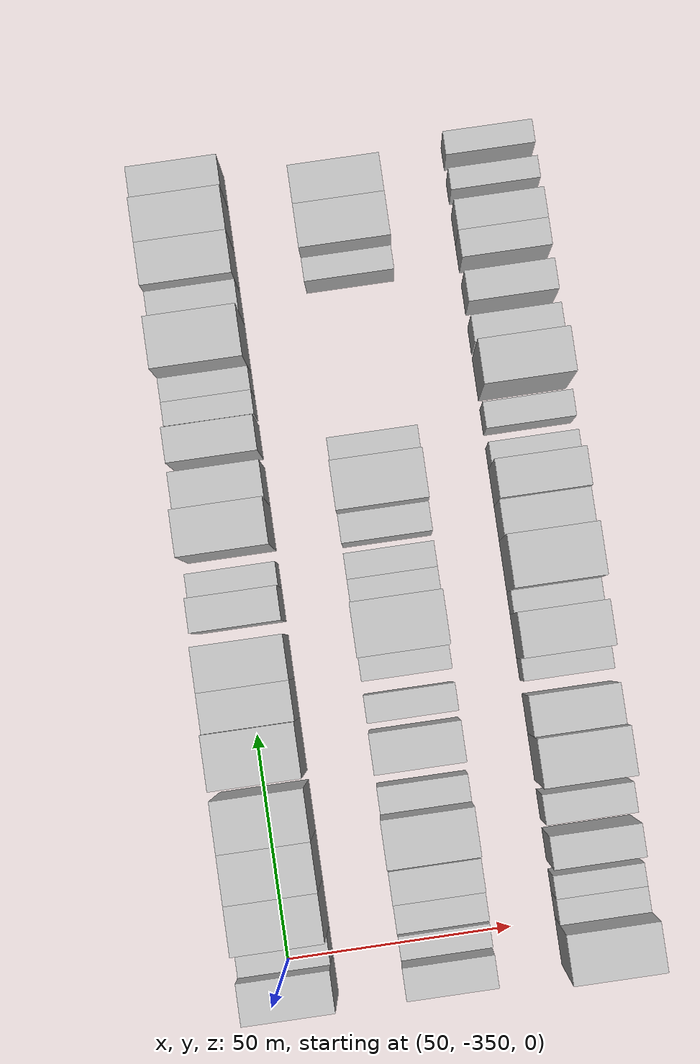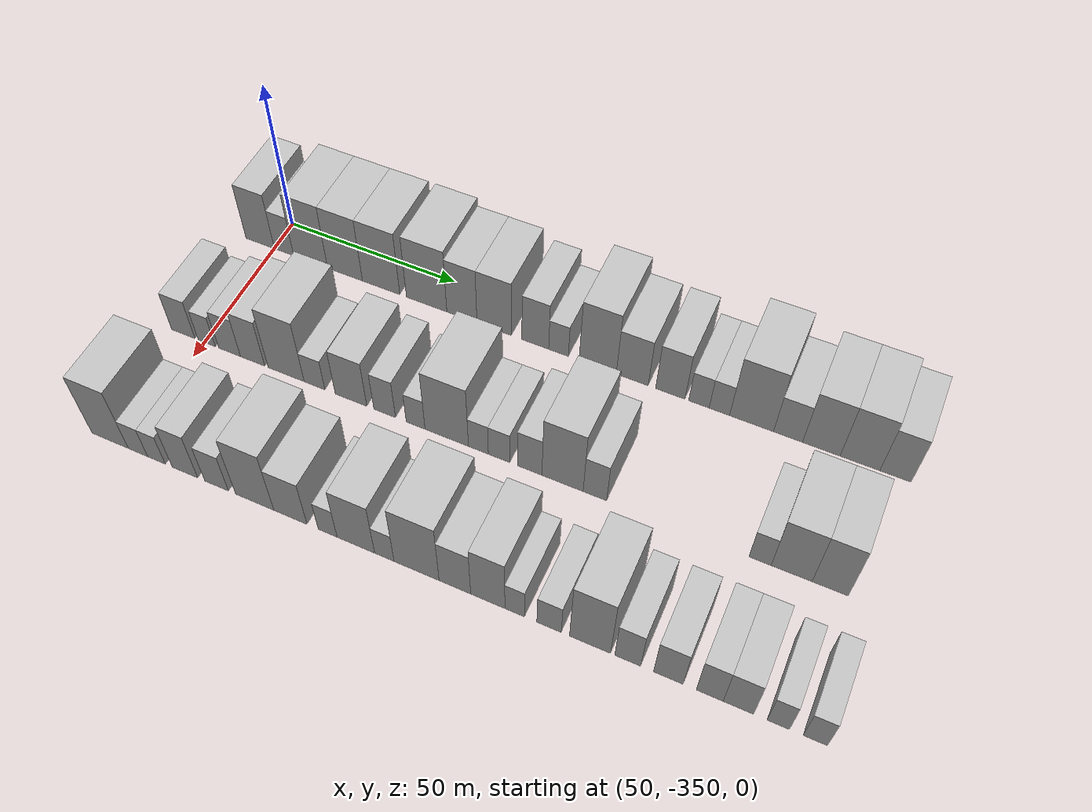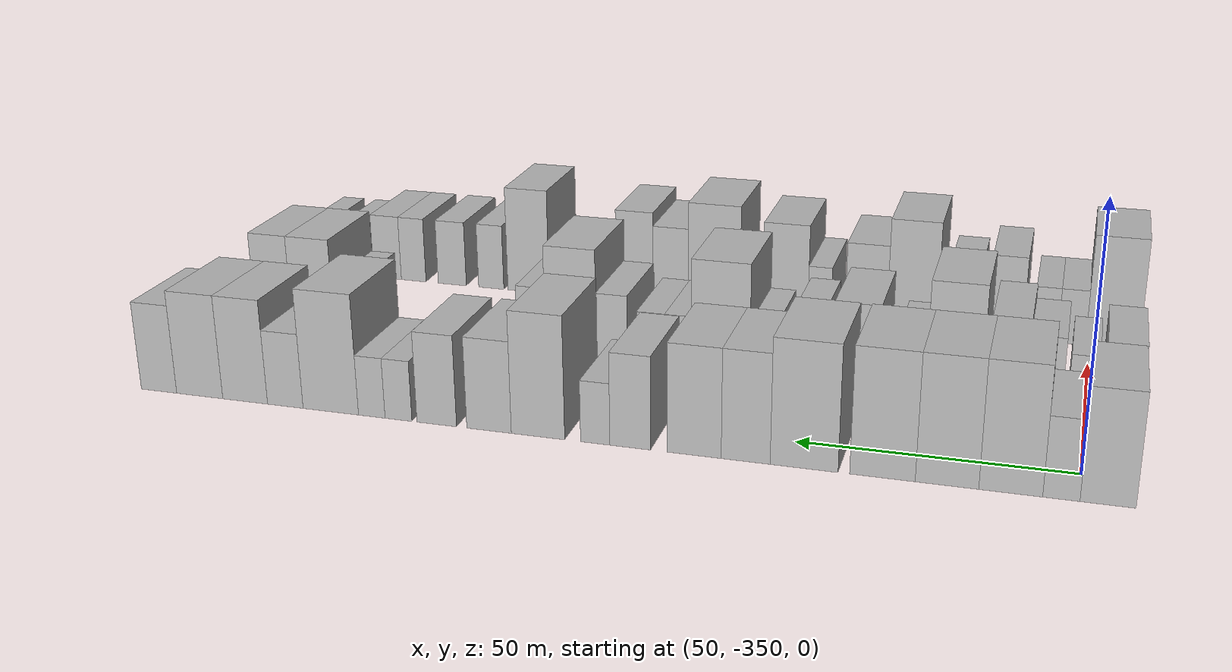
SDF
<sdf version="1.6">
 <world name="default">
  <model name="building_1">
   <static>1</static>
   <pose>50.0000 -354.4846 0 0.000000 0.000000 0.000000</pose>
   <link name="link">
    <pose>0 0 10.50 0 0 0</pose>
    <collision name="collision"><geometry><box><size>20.0000 9.0309 21.0000</size></box></geometry></collision>
    <visual name="visual">
     <cast_shadows>0</cast_shadows>
     <geometry><box><size>20.0000 9.0309 21.0000</size></box></geometry>
     <material>
      <script>
       <uri>model://HANNAS_wall/materials/scripts</uri>
       <uri>model://HANNAS_wall/materials/textures</uri>
       <name>vrc/HANNAS_wall</name>
      </script>
     </material>
    </visual>
   </link>
  </model>
  <model name="building_2">
   <static>1</static>
   <pose>50.0000 -346.9367 0 0.000000 0.000000 0.000000</pose>
   <link name="link">
    <pose>0 0 7.50 0 0 0</pose>
    <collision name="collision"><geometry><box><size>20.0000 6.0649 15.0000</size></box></geometry></collision>
    <visual name="visual">
     <cast_shadows>0</cast_shadows>
     <geometry><box><size>20.0000 6.0649 15.0000</size></box></geometry>
     <material>
      <script>
       <uri>model://HANNAS_wall/materials/scripts</uri>
       <uri>model://HANNAS_wall/materials/textures</uri>
       <name>vrc/HANNAS_wall</name>
      </script>
     </material>
    </visual>
   </link>
  </model>
  <model name="building_3">
   <static>1</static>
   <pose>50.0000 -338.6176 0 0.000000 0.000000 0.000000</pose>
   <link name="link">
    <pose>0 0 12.00 0 0 0</pose>
    <collision name="collision"><geometry><box><size>20.0000 10.5732 24.0000</size></box></geometry></collision>
    <visual name="visual">
     <cast_shadows>0</cast_shadows>
     <geometry><box><size>20.0000 10.5732 24.0000</size></box></geometry>
     <material>
      <script>
       <uri>model://HANNAS_wall/materials/scripts</uri>
       <uri>model://HANNAS_wall/materials/textures</uri>
       <name>vrc/HANNAS_wall</name>
      </script>
     </material>
    </visual>
   </link>
  </model>
  <model name="building_4">
   <static>1</static>
   <pose>50.0000 -327.9796 0 0.000000 0.000000 0.000000</pose>
   <link name="link">
    <pose>0 0 12.00 0 0 0</pose>
    <collision name="collision"><geometry><box><size>20.0000 10.7028 24.0000</size></box></geometry></collision>
    <visual name="visual">
     <cast_shadows>0</cast_shadows>
     <geometry><box><size>20.0000 10.7028 24.0000</size></box></geometry>
     <material>
      <script>
       <uri>model://HANNAS_wall/materials/scripts</uri>
       <uri>model://HANNAS_wall/materials/textures</uri>
       <name>vrc/HANNAS_wall</name>
      </script>
     </material>
    </visual>
   </link>
  </model>
  <model name="building_5">
   <static>1</static>
   <pose>50.0000 -316.9930 0 0.000000 0.000000 0.000000</pose>
   <link name="link">
    <pose>0 0 12.00 0 0 0</pose>
    <collision name="collision"><geometry><box><size>20.0000 11.2703 24.0000</size></box></geometry></collision>
    <visual name="visual">
     <cast_shadows>0</cast_shadows>
     <geometry><box><size>20.0000 11.2703 24.0000</size></box></geometry>
     <material>
      <script>
       <uri>model://HANNAS_wall/materials/scripts</uri>
       <uri>model://HANNAS_wall/materials/textures</uri>
       <name>vrc/HANNAS_wall</name>
      </script>
     </material>
    </visual>
   </link>
  </model>
  <model name="building_6">
   <static>1</static>
   <pose>50.0000 -303.3786 0 0.000000 0.000000 0.000000</pose>
   <link name="link">
    <pose>0 0 12.00 0 0 0</pose>
    <collision name="collision"><geometry><box><size>20.0000 11.9585 24.0000</size></box></geometry></collision>
    <visual name="visual">
     <cast_shadows>0</cast_shadows>
     <geometry><box><size>20.0000 11.9585 24.0000</size></box></geometry>
     <material>
      <script>
       <uri>model://HANNAS_wall/materials/scripts</uri>
       <uri>model://HANNAS_wall/materials/textures</uri>
       <name>vrc/HANNAS_wall</name>
      </script>
     </material>
    </visual>
   </link>
  </model>
  <model name="building_7">
   <static>1</static>
   <pose>50.0000 -293.0085 0 0.000000 0.000000 0.000000</pose>
   <link name="link">
    <pose>0 0 10.50 0 0 0</pose>
    <collision name="collision"><geometry><box><size>20.0000 8.7817 21.0000</size></box></geometry></collision>
    <visual name="visual">
     <cast_shadows>0</cast_shadows>
     <geometry><box><size>20.0000 8.7817 21.0000</size></box></geometry>
     <material>
      <script>
       <uri>model://HANNAS_wall/materials/scripts</uri>
       <uri>model://HANNAS_wall/materials/textures</uri>
       <name>vrc/HANNAS_wall</name>
      </script>
     </material>
    </visual>
   </link>
  </model>
  <model name="building_8">
   <static>1</static>
   <pose>50.0000 -283.6809 0 0.000000 0.000000 0.000000</pose>
   <link name="link">
    <pose>0 0 10.50 0 0 0</pose>
    <collision name="collision"><geometry><box><size>20.0000 9.8734 21.0000</size></box></geometry></collision>
    <visual name="visual">
     <cast_shadows>0</cast_shadows>
     <geometry><box><size>20.0000 9.8734 21.0000</size></box></geometry>
     <material>
      <script>
       <uri>model://HANNAS_wall/materials/scripts</uri>
       <uri>model://HANNAS_wall/materials/textures</uri>
       <name>vrc/HANNAS_wall</name>
      </script>
     </material>
    </visual>
   </link>
  </model>
  <model name="building_9">
   <static>1</static>
   <pose>50.0000 -271.9531 0 0.000000 0.000000 0.000000</pose>
   <link name="link">
    <pose>0 0 9.00 0 0 0</pose>
    <collision name="collision"><geometry><box><size>20.0000 7.5822 18.0000</size></box></geometry></collision>
    <visual name="visual">
     <cast_shadows>0</cast_shadows>
     <geometry><box><size>20.0000 7.5822 18.0000</size></box></geometry>
     <material>
      <script>
       <uri>model://HANNAS_wall/materials/scripts</uri>
       <uri>model://HANNAS_wall/materials/textures</uri>
       <name>vrc/HANNAS_wall</name>
      </script>
     </material>
    </visual>
   </link>
  </model>
  <model name="building_10">
   <static>1</static>
   <pose>50.0000 -265.4090 0 0.000000 0.000000 0.000000</pose>
   <link name="link">
    <pose>0 0 6.00 0 0 0</pose>
    <collision name="collision"><geometry><box><size>20.0000 5.5061 12.0000</size></box></geometry></collision>
    <visual name="visual">
     <cast_shadows>0</cast_shadows>
     <geometry><box><size>20.0000 5.5061 12.0000</size></box></geometry>
     <material>
      <script>
       <uri>model://HANNAS_wall/materials/scripts</uri>
       <uri>model://HANNAS_wall/materials/textures</uri>
       <name>vrc/HANNAS_wall</name>
      </script>
     </material>
    </visual>
   </link>
  </model>
  <model name="building_11">
   <static>1</static>
   <pose>50.0000 -254.5445 0 0.000000 0.000000 0.000000</pose>
   <link name="link">
    <pose>0 0 12.00 0 0 0</pose>
    <collision name="collision"><geometry><box><size>20.0000 10.2230 24.0000</size></box></geometry></collision>
    <visual name="visual">
     <cast_shadows>0</cast_shadows>
     <geometry><box><size>20.0000 10.2230 24.0000</size></box></geometry>
     <material>
      <script>
       <uri>model://HANNAS_wall/materials/scripts</uri>
       <uri>model://HANNAS_wall/materials/textures</uri>
       <name>vrc/HANNAS_wall</name>
      </script>
     </material>
    </visual>
   </link>
  </model>
  <model name="building_12">
   <static>1</static>
   <pose>50.0000 -245.1012 0 0.000000 0.000000 0.000000</pose>
   <link name="link">
    <pose>0 0 9.00 0 0 0</pose>
    <collision name="collision"><geometry><box><size>20.0000 8.6635 18.0000</size></box></geometry></collision>
    <visual name="visual">
     <cast_shadows>0</cast_shadows>
     <geometry><box><size>20.0000 8.6635 18.0000</size></box></geometry>
     <material>
      <script>
       <uri>model://HANNAS_wall/materials/scripts</uri>
       <uri>model://HANNAS_wall/materials/textures</uri>
       <name>vrc/HANNAS_wall</name>
      </script>
     </material>
    </visual>
   </link>
  </model>
  <model name="building_13">
   <static>1</static>
   <pose>50.0000 -234.8488 0 0.000000 0.000000 0.000000</pose>
   <link name="link">
    <pose>0 0 9.00 0 0 0</pose>
    <collision name="collision"><geometry><box><size>20.0000 7.8414 18.0000</size></box></geometry></collision>
    <visual name="visual">
     <cast_shadows>0</cast_shadows>
     <geometry><box><size>20.0000 7.8414 18.0000</size></box></geometry>
     <material>
      <script>
       <uri>model://HANNAS_wall/materials/scripts</uri>
       <uri>model://HANNAS_wall/materials/textures</uri>
       <name>vrc/HANNAS_wall</name>
      </script>
     </material>
    </visual>
   </link>
  </model>
  <model name="building_14">
   <static>1</static>
   <pose>50.0000 -227.2313 0 0.000000 0.000000 0.000000</pose>
   <link name="link">
    <pose>0 0 6.00 0 0 0</pose>
    <collision name="collision"><geometry><box><size>20.0000 5.3936 12.0000</size></box></geometry></collision>
    <visual name="visual">
     <cast_shadows>0</cast_shadows>
     <geometry><box><size>20.0000 5.3936 12.0000</size></box></geometry>
     <material>
      <script>
       <uri>model://HANNAS_wall/materials/scripts</uri>
       <uri>model://HANNAS_wall/materials/textures</uri>
       <name>vrc/HANNAS_wall</name>
      </script>
     </material>
    </visual>
   </link>
  </model>
  <model name="building_15">
   <static>1</static>
   <pose>50.0000 -221.8529 0 0.000000 0.000000 0.000000</pose>
   <link name="link">
    <pose>0 0 6.00 0 0 0</pose>
    <collision name="collision"><geometry><box><size>20.0000 5.3632 12.0000</size></box></geometry></collision>
    <visual name="visual">
     <cast_shadows>0</cast_shadows>
     <geometry><box><size>20.0000 5.3632 12.0000</size></box></geometry>
     <material>
      <script>
       <uri>model://HANNAS_wall/materials/scripts</uri>
       <uri>model://HANNAS_wall/materials/textures</uri>
       <name>vrc/HANNAS_wall</name>
      </script>
     </material>
    </visual>
   </link>
  </model>
  <model name="building_16">
   <static>1</static>
   <pose>50.0000 -213.4907 0 0.000000 0.000000 0.000000</pose>
   <link name="link">
    <pose>0 0 12.00 0 0 0</pose>
    <collision name="collision"><geometry><box><size>20.0000 11.3611 24.0000</size></box></geometry></collision>
    <visual name="visual">
     <cast_shadows>0</cast_shadows>
     <geometry><box><size>20.0000 11.3611 24.0000</size></box></geometry>
     <material>
      <script>
       <uri>model://HANNAS_wall/materials/scripts</uri>
       <uri>model://HANNAS_wall/materials/textures</uri>
       <name>vrc/HANNAS_wall</name>
      </script>
     </material>
    </visual>
   </link>
  </model>
  <model name="building_17">
   <static>1</static>
   <pose>50.0000 -204.1119 0 0.000000 0.000000 0.000000</pose>
   <link name="link">
    <pose>0 0 7.50 0 0 0</pose>
    <collision name="collision"><geometry><box><size>20.0000 7.3966 15.0000</size></box></geometry></collision>
    <visual name="visual">
     <cast_shadows>0</cast_shadows>
     <geometry><box><size>20.0000 7.3966 15.0000</size></box></geometry>
     <material>
      <script>
       <uri>model://HANNAS_wall/materials/scripts</uri>
       <uri>model://HANNAS_wall/materials/textures</uri>
       <name>vrc/HANNAS_wall</name>
      </script>
     </material>
    </visual>
   </link>
  </model>
  <model name="building_18">
   <static>1</static>
   <pose>50.0000 -195.6882 0 0.000000 0.000000 0.000000</pose>
   <link name="link">
    <pose>0 0 10.50 0 0 0</pose>
    <collision name="collision"><geometry><box><size>20.0000 9.4509 21.0000</size></box></geometry></collision>
    <visual name="visual">
     <cast_shadows>0</cast_shadows>
     <geometry><box><size>20.0000 9.4509 21.0000</size></box></geometry>
     <material>
      <script>
       <uri>model://HANNAS_wall/materials/scripts</uri>
       <uri>model://HANNAS_wall/materials/textures</uri>
       <name>vrc/HANNAS_wall</name>
      </script>
     </material>
    </visual>
   </link>
  </model>
  <model name="building_19">
   <static>1</static>
   <pose>50.0000 -186.0301 0 0.000000 0.000000 0.000000</pose>
   <link name="link">
    <pose>0 0 10.50 0 0 0</pose>
    <collision name="collision"><geometry><box><size>20.0000 9.8652 21.0000</size></box></geometry></collision>
    <visual name="visual">
     <cast_shadows>0</cast_shadows>
     <geometry><box><size>20.0000 9.8652 21.0000</size></box></geometry>
     <material>
      <script>
       <uri>model://HANNAS_wall/materials/scripts</uri>
       <uri>model://HANNAS_wall/materials/textures</uri>
       <name>vrc/HANNAS_wall</name>
      </script>
     </material>
    </visual>
   </link>
  </model>
  <model name="building_20">
   <static>1</static>
   <pose>50.0000 -177.2665 0 0.000000 0.000000 0.000000</pose>
   <link name="link">
    <pose>0 0 9.00 0 0 0</pose>
    <collision name="collision"><geometry><box><size>20.0000 7.6620 18.0000</size></box></geometry></collision>
    <visual name="visual">
     <cast_shadows>0</cast_shadows>
     <geometry><box><size>20.0000 7.6620 18.0000</size></box></geometry>
     <material>
      <script>
       <uri>model://HANNAS_wall/materials/scripts</uri>
       <uri>model://HANNAS_wall/materials/textures</uri>
       <name>vrc/HANNAS_wall</name>
      </script>
     </material>
    </visual>
   </link>
  </model>
  <model name="building_77">
   <static>1</static>
   <pose>85.0000 -356.4351 0 0.000000 0.000000 0.000000</pose>
   <link name="link">
    <pose>0 0 7.50 0 0 0</pose>
    <collision name="collision"><geometry><box><size>20.0000 7.1298 15.0000</size></box></geometry></collision>
    <visual name="visual">
     <cast_shadows>0</cast_shadows>
     <geometry><box><size>20.0000 7.1298 15.0000</size></box></geometry>
     <material>
      <script>
       <uri>model://HANNAS_wall/materials/scripts</uri>
       <uri>model://HANNAS_wall/materials/textures</uri>
       <name>vrc/HANNAS_wall</name>
      </script>
     </material>
    </visual>
   </link>
  </model>
  <model name="building_78">
   <static>1</static>
   <pose>85.0000 -349.2698 0 0.000000 0.000000 0.000000</pose>
   <link name="link">
    <pose>0 0 6.00 0 0 0</pose>
    <collision name="collision"><geometry><box><size>20.0000 5.2008 12.0000</size></box></geometry></collision>
    <visual name="visual">
     <cast_shadows>0</cast_shadows>
     <geometry><box><size>20.0000 5.2008 12.0000</size></box></geometry>
     <material>
      <script>
       <uri>model://HANNAS_wall/materials/scripts</uri>
       <uri>model://HANNAS_wall/materials/textures</uri>
       <name>vrc/HANNAS_wall</name>
      </script>
     </material>
    </visual>
   </link>
  </model>
  <model name="building_79">
   <static>1</static>
   <pose>85.0000 -342.3805 0 0.000000 0.000000 0.000000</pose>
   <link name="link">
    <pose>0 0 7.50 0 0 0</pose>
    <collision name="collision"><geometry><box><size>20.0000 6.5778 15.0000</size></box></geometry></collision>
    <visual name="visual">
     <cast_shadows>0</cast_shadows>
     <geometry><box><size>20.0000 6.5778 15.0000</size></box></geometry>
     <material>
      <script>
       <uri>model://HANNAS_wall/materials/scripts</uri>
       <uri>model://HANNAS_wall/materials/textures</uri>
       <name>vrc/HANNAS_wall</name>
      </script>
     </material>
    </visual>
   </link>
  </model>
  <model name="building_80">
   <static>1</static>
   <pose>85.0000 -335.4905 0 0.000000 0.000000 0.000000</pose>
   <link name="link">
    <pose>0 0 9.00 0 0 0</pose>
    <collision name="collision"><geometry><box><size>20.0000 7.2023 18.0000</size></box></geometry></collision>
    <visual name="visual">
     <cast_shadows>0</cast_shadows>
     <geometry><box><size>20.0000 7.2023 18.0000</size></box></geometry>
     <material>
      <script>
       <uri>model://HANNAS_wall/materials/scripts</uri>
       <uri>model://HANNAS_wall/materials/textures</uri>
       <name>vrc/HANNAS_wall</name>
      </script>
     </material>
    </visual>
   </link>
  </model>
  <model name="building_81">
   <static>1</static>
   <pose>85.0000 -325.5970 0 0.000000 0.000000 0.000000</pose>
   <link name="link">
    <pose>0 0 12.00 0 0 0</pose>
    <collision name="collision"><geometry><box><size>20.0000 10.5845 24.0000</size></box></geometry></collision>
    <visual name="visual">
     <cast_shadows>0</cast_shadows>
     <geometry><box><size>20.0000 10.5845 24.0000</size></box></geometry>
     <material>
      <script>
       <uri>model://HANNAS_wall/materials/scripts</uri>
       <uri>model://HANNAS_wall/materials/textures</uri>
       <name>vrc/HANNAS_wall</name>
      </script>
     </material>
    </visual>
   </link>
  </model>
  <model name="building_82">
   <static>1</static>
   <pose>85.0000 -317.3153 0 0.000000 0.000000 0.000000</pose>
   <link name="link">
    <pose>0 0 6.00 0 0 0</pose>
    <collision name="collision"><geometry><box><size>20.0000 5.9789 12.0000</size></box></geometry></collision>
    <visual name="visual">
     <cast_shadows>0</cast_shadows>
     <geometry><box><size>20.0000 5.9789 12.0000</size></box></geometry>
     <material>
      <script>
       <uri>model://HANNAS_wall/materials/scripts</uri>
       <uri>model://HANNAS_wall/materials/textures</uri>
       <name>vrc/HANNAS_wall</name>
      </script>
     </material>
    </visual>
   </link>
  </model>
  <model name="building_83">
   <static>1</static>
   <pose>85.0000 -306.8325 0 0.000000 0.000000 0.000000</pose>
   <link name="link">
    <pose>0 0 9.00 0 0 0</pose>
    <collision name="collision"><geometry><box><size>20.0000 8.9867 18.0000</size></box></geometry></collision>
    <visual name="visual">
     <cast_shadows>0</cast_shadows>
     <geometry><box><size>20.0000 8.9867 18.0000</size></box></geometry>
     <material>
      <script>
       <uri>model://HANNAS_wall/materials/scripts</uri>
       <uri>model://HANNAS_wall/materials/textures</uri>
       <name>vrc/HANNAS_wall</name>
      </script>
     </material>
    </visual>
   </link>
  </model>
  <model name="building_84">
   <static>1</static>
   <pose>85.0000 -297.3110 0 0.000000 0.000000 0.000000</pose>
   <link name="link">
    <pose>0 0 7.50 0 0 0</pose>
    <collision name="collision"><geometry><box><size>20.0000 6.0563 15.0000</size></box></geometry></collision>
    <visual name="visual">
     <cast_shadows>0</cast_shadows>
     <geometry><box><size>20.0000 6.0563 15.0000</size></box></geometry>
     <material>
      <script>
       <uri>model://HANNAS_wall/materials/scripts</uri>
       <uri>model://HANNAS_wall/materials/textures</uri>
       <name>vrc/HANNAS_wall</name>
      </script>
     </material>
    </visual>
   </link>
  </model>
  <model name="building_85">
   <static>1</static>
   <pose>85.0000 -288.6707 0 0.000000 0.000000 0.000000</pose>
   <link name="link">
    <pose>0 0 6.00 0 0 0</pose>
    <collision name="collision"><geometry><box><size>20.0000 5.2242 12.0000</size></box></geometry></collision>
    <visual name="visual">
     <cast_shadows>0</cast_shadows>
     <geometry><box><size>20.0000 5.2242 12.0000</size></box></geometry>
     <material>
      <script>
       <uri>model://HANNAS_wall/materials/scripts</uri>
       <uri>model://HANNAS_wall/materials/textures</uri>
       <name>vrc/HANNAS_wall</name>
      </script>
     </material>
    </visual>
   </link>
  </model>
  <model name="building_86">
   <static>1</static>
   <pose>85.0000 -280.1281 0 0.000000 0.000000 0.000000</pose>
   <link name="link">
    <pose>0 0 12.00 0 0 0</pose>
    <collision name="collision"><geometry><box><size>20.0000 11.8610 24.0000</size></box></geometry></collision>
    <visual name="visual">
     <cast_shadows>0</cast_shadows>
     <geometry><box><size>20.0000 11.8610 24.0000</size></box></geometry>
     <material>
      <script>
       <uri>model://HANNAS_wall/materials/scripts</uri>
       <uri>model://HANNAS_wall/materials/textures</uri>
       <name>vrc/HANNAS_wall</name>
      </script>
     </material>
    </visual>
   </link>
  </model>
  <model name="building_87">
   <static>1</static>
   <pose>85.0000 -271.5228 0 0.000000 0.000000 0.000000</pose>
   <link name="link">
    <pose>0 0 6.00 0 0 0</pose>
    <collision name="collision"><geometry><box><size>20.0000 5.3496 12.0000</size></box></geometry></collision>
    <visual name="visual">
     <cast_shadows>0</cast_shadows>
     <geometry><box><size>20.0000 5.3496 12.0000</size></box></geometry>
     <material>
      <script>
       <uri>model://HANNAS_wall/materials/scripts</uri>
       <uri>model://HANNAS_wall/materials/textures</uri>
       <name>vrc/HANNAS_wall</name>
      </script>
     </material>
    </visual>
   </link>
  </model>
  <model name="building_88">
   <static>1</static>
   <pose>85.0000 -265.9810 0 0.000000 0.000000 0.000000</pose>
   <link name="link">
    <pose>0 0 6.00 0 0 0</pose>
    <collision name="collision"><geometry><box><size>20.0000 5.7339 12.0000</size></box></geometry></collision>
    <visual name="visual">
     <cast_shadows>0</cast_shadows>
     <geometry><box><size>20.0000 5.7339 12.0000</size></box></geometry>
     <material>
      <script>
       <uri>model://HANNAS_wall/materials/scripts</uri>
       <uri>model://HANNAS_wall/materials/textures</uri>
       <name>vrc/HANNAS_wall</name>
      </script>
     </material>
    </visual>
   </link>
  </model>
  <model name="building_89">
   <static>1</static>
   <pose>85.0000 -257.8806 0 0.000000 0.000000 0.000000</pose>
   <link name="link">
    <pose>0 0 7.50 0 0 0</pose>
    <collision name="collision"><geometry><box><size>20.0000 6.4669 15.0000</size></box></geometry></collision>
    <visual name="visual">
     <cast_shadows>0</cast_shadows>
     <geometry><box><size>20.0000 6.4669 15.0000</size></box></geometry>
     <material>
      <script>
       <uri>model://HANNAS_wall/materials/scripts</uri>
       <uri>model://HANNAS_wall/materials/textures</uri>
       <name>vrc/HANNAS_wall</name>
      </script>
     </material>
    </visual>
   </link>
  </model>
  <model name="building_90">
   <static>1</static>
   <pose>85.0000 -249.2735 0 0.000000 0.000000 0.000000</pose>
   <link name="link">
    <pose>0 0 12.00 0 0 0</pose>
    <collision name="collision"><geometry><box><size>20.0000 10.7474 24.0000</size></box></geometry></collision>
    <visual name="visual">
     <cast_shadows>0</cast_shadows>
     <geometry><box><size>20.0000 10.7474 24.0000</size></box></geometry>
     <material>
      <script>
       <uri>model://HANNAS_wall/materials/scripts</uri>
       <uri>model://HANNAS_wall/materials/textures</uri>
       <name>vrc/HANNAS_wall</name>
      </script>
     </material>
    </visual>
   </link>
  </model>
  <model name="building_91">
   <static>1</static>
   <pose>85.0000 -240.8806 0 0.000000 0.000000 0.000000</pose>
   <link name="link">
    <pose>0 0 7.50 0 0 0</pose>
    <collision name="collision"><geometry><box><size>20.0000 6.0384 15.0000</size></box></geometry></collision>
    <visual name="visual">
     <cast_shadows>0</cast_shadows>
     <geometry><box><size>20.0000 6.0384 15.0000</size></box></geometry>
     <material>
      <script>
       <uri>model://HANNAS_wall/materials/scripts</uri>
       <uri>model://HANNAS_wall/materials/textures</uri>
       <name>vrc/HANNAS_wall</name>
      </script>
     </material>
    </visual>
   </link>
  </model>
  <model name="building_92">
   <static>1</static>
   <pose>85.0000 -199.8554 0 0.000000 0.000000 0.000000</pose>
   <link name="link">
    <pose>0 0 6.00 0 0 0</pose>
    <collision name="collision"><geometry><box><size>20.0000 5.3373 12.0000</size></box></geometry></collision>
    <visual name="visual">
     <cast_shadows>0</cast_shadows>
     <geometry><box><size>20.0000 5.3373 12.0000</size></box></geometry>
     <material>
      <script>
       <uri>model://HANNAS_wall/materials/scripts</uri>
       <uri>model://HANNAS_wall/materials/textures</uri>
       <name>vrc/HANNAS_wall</name>
      </script>
     </material>
    </visual>
   </link>
  </model>
  <model name="building_93">
   <static>1</static>
   <pose>85.0000 -192.3418 0 0.000000 0.000000 0.000000</pose>
   <link name="link">
    <pose>0 0 10.50 0 0 0</pose>
    <collision name="collision"><geometry><box><size>20.0000 9.6899 21.0000</size></box></geometry></collision>
    <visual name="visual">
     <cast_shadows>0</cast_shadows>
     <geometry><box><size>20.0000 9.6899 21.0000</size></box></geometry>
     <material>
      <script>
       <uri>model://HANNAS_wall/materials/scripts</uri>
       <uri>model://HANNAS_wall/materials/textures</uri>
       <name>vrc/HANNAS_wall</name>
      </script>
     </material>
    </visual>
   </link>
  </model>
  <model name="building_94">
   <static>1</static>
   <pose>85.0000 -183.2558 0 0.000000 0.000000 0.000000</pose>
   <link name="link">
    <pose>0 0 10.50 0 0 0</pose>
    <collision name="collision"><geometry><box><size>20.0000 8.4821 21.0000</size></box></geometry></collision>
    <visual name="visual">
     <cast_shadows>0</cast_shadows>
     <geometry><box><size>20.0000 8.4821 21.0000</size></box></geometry>
     <material>
      <script>
       <uri>model://HANNAS_wall/materials/scripts</uri>
       <uri>model://HANNAS_wall/materials/textures</uri>
       <name>vrc/HANNAS_wall</name>
      </script>
     </material>
    </visual>
   </link>
  </model>
  <model name="building_159">
   <static>1</static>
   <pose>120.0000 -354.6484 0 0.000000 0.000000 0.000000</pose>
   <link name="link">
    <pose>0 0 12.00 0 0 0</pose>
    <collision name="collision"><geometry><box><size>20.0000 10.7032 24.0000</size></box></geometry></collision>
    <visual name="visual">
     <cast_shadows>0</cast_shadows>
     <geometry><box><size>20.0000 10.7032 24.0000</size></box></geometry>
     <material>
      <script>
       <uri>model://HANNAS_wall/materials/scripts</uri>
       <uri>model://HANNAS_wall/materials/textures</uri>
       <name>vrc/HANNAS_wall</name>
      </script>
     </material>
    </visual>
   </link>
  </model>
  <model name="building_160">
   <static>1</static>
   <pose>120.0000 -346.4985 0 0.000000 0.000000 0.000000</pose>
   <link name="link">
    <pose>0 0 6.00 0 0 0</pose>
    <collision name="collision"><geometry><box><size>20.0000 5.5966 12.0000</size></box></geometry></collision>
    <visual name="visual">
     <cast_shadows>0</cast_shadows>
     <geometry><box><size>20.0000 5.5966 12.0000</size></box></geometry>
     <material>
      <script>
       <uri>model://HANNAS_wall/materials/scripts</uri>
       <uri>model://HANNAS_wall/materials/textures</uri>
       <name>vrc/HANNAS_wall</name>
      </script>
     </material>
    </visual>
   </link>
  </model>
  <model name="building_161">
   <static>1</static>
   <pose>120.0000 -341.1580 0 0.000000 0.000000 0.000000</pose>
   <link name="link">
    <pose>0 0 6.00 0 0 0</pose>
    <collision name="collision"><geometry><box><size>20.0000 5.0844 12.0000</size></box></geometry></collision>
    <visual name="visual">
     <cast_shadows>0</cast_shadows>
     <geometry><box><size>20.0000 5.0844 12.0000</size></box></geometry>
     <material>
      <script>
       <uri>model://HANNAS_wall/materials/scripts</uri>
       <uri>model://HANNAS_wall/materials/textures</uri>
       <name>vrc/HANNAS_wall</name>
      </script>
     </material>
    </visual>
   </link>
  </model>
  <model name="building_162">
   <static>1</static>
   <pose>120.0000 -333.0033 0 0.000000 0.000000 0.000000</pose>
   <link name="link">
    <pose>0 0 9.00 0 0 0</pose>
    <collision name="collision"><geometry><box><size>20.0000 7.2250 18.0000</size></box></geometry></collision>
    <visual name="visual">
     <cast_shadows>0</cast_shadows>
     <geometry><box><size>20.0000 7.2250 18.0000</size></box></geometry>
     <material>
      <script>
       <uri>model://HANNAS_wall/materials/scripts</uri>
       <uri>model://HANNAS_wall/materials/textures</uri>
       <name>vrc/HANNAS_wall</name>
      </script>
     </material>
    </visual>
   </link>
  </model>
  <model name="building_163">
   <static>1</static>
   <pose>120.0000 -324.0798 0 0.000000 0.000000 0.000000</pose>
   <link name="link">
    <pose>0 0 7.50 0 0 0</pose>
    <collision name="collision"><geometry><box><size>20.0000 6.6219 15.0000</size></box></geometry></collision>
    <visual name="visual">
     <cast_shadows>0</cast_shadows>
     <geometry><box><size>20.0000 6.6219 15.0000</size></box></geometry>
     <material>
      <script>
       <uri>model://HANNAS_wall/materials/scripts</uri>
       <uri>model://HANNAS_wall/materials/textures</uri>
       <name>vrc/HANNAS_wall</name>
      </script>
     </material>
    </visual>
   </link>
  </model>
  <model name="building_164">
   <static>1</static>
   <pose>120.0000 -313.4905 0 0.000000 0.000000 0.000000</pose>
   <link name="link">
    <pose>0 0 12.00 0 0 0</pose>
    <collision name="collision"><geometry><box><size>20.0000 10.5567 24.0000</size></box></geometry></collision>
    <visual name="visual">
     <cast_shadows>0</cast_shadows>
     <geometry><box><size>20.0000 10.5567 24.0000</size></box></geometry>
     <material>
      <script>
       <uri>model://HANNAS_wall/materials/scripts</uri>
       <uri>model://HANNAS_wall/materials/textures</uri>
       <name>vrc/HANNAS_wall</name>
      </script>
     </material>
    </visual>
   </link>
  </model>
  <model name="building_165">
   <static>1</static>
   <pose>120.0000 -303.7315 0 0.000000 0.000000 0.000000</pose>
   <link name="link">
    <pose>0 0 9.00 0 0 0</pose>
    <collision name="collision"><geometry><box><size>20.0000 8.9613 18.0000</size></box></geometry></collision>
    <visual name="visual">
     <cast_shadows>0</cast_shadows>
     <geometry><box><size>20.0000 8.9613 18.0000</size></box></geometry>
     <material>
      <script>
       <uri>model://HANNAS_wall/materials/scripts</uri>
       <uri>model://HANNAS_wall/materials/textures</uri>
       <name>vrc/HANNAS_wall</name>
      </script>
     </material>
    </visual>
   </link>
  </model>
  <model name="building_166">
   <static>1</static>
   <pose>120.0000 -293.7350 0 0.000000 0.000000 0.000000</pose>
   <link name="link">
    <pose>0 0 6.00 0 0 0</pose>
    <collision name="collision"><geometry><box><size>20.0000 5.0317 12.0000</size></box></geometry></collision>
    <visual name="visual">
     <cast_shadows>0</cast_shadows>
     <geometry><box><size>20.0000 5.0317 12.0000</size></box></geometry>
     <material>
      <script>
       <uri>model://HANNAS_wall/materials/scripts</uri>
       <uri>model://HANNAS_wall/materials/textures</uri>
       <name>vrc/HANNAS_wall</name>
      </script>
     </material>
    </visual>
   </link>
  </model>
  <model name="building_167">
   <static>1</static>
   <pose>120.0000 -286.2786 0 0.000000 0.000000 0.000000</pose>
   <link name="link">
    <pose>0 0 10.50 0 0 0</pose>
    <collision name="collision"><geometry><box><size>20.0000 9.8811 21.0000</size></box></geometry></collision>
    <visual name="visual">
     <cast_shadows>0</cast_shadows>
     <geometry><box><size>20.0000 9.8811 21.0000</size></box></geometry>
     <material>
      <script>
       <uri>model://HANNAS_wall/materials/scripts</uri>
       <uri>model://HANNAS_wall/materials/textures</uri>
       <name>vrc/HANNAS_wall</name>
      </script>
     </material>
    </visual>
   </link>
  </model>
  <model name="building_168">
   <static>1</static>
   <pose>120.0000 -278.8066 0 0.000000 0.000000 0.000000</pose>
   <link name="link">
    <pose>0 0 6.00 0 0 0</pose>
    <collision name="collision"><geometry><box><size>20.0000 5.0628 12.0000</size></box></geometry></collision>
    <visual name="visual">
     <cast_shadows>0</cast_shadows>
     <geometry><box><size>20.0000 5.0628 12.0000</size></box></geometry>
     <material>
      <script>
       <uri>model://HANNAS_wall/materials/scripts</uri>
       <uri>model://HANNAS_wall/materials/textures</uri>
       <name>vrc/HANNAS_wall</name>
      </script>
     </material>
    </visual>
   </link>
  </model>
  <model name="building_169">
   <static>1</static>
   <pose>120.0000 -270.4989 0 0.000000 0.000000 0.000000</pose>
   <link name="link">
    <pose>0 0 12.00 0 0 0</pose>
    <collision name="collision"><geometry><box><size>20.0000 11.5526 24.0000</size></box></geometry></collision>
    <visual name="visual">
     <cast_shadows>0</cast_shadows>
     <geometry><box><size>20.0000 11.5526 24.0000</size></box></geometry>
     <material>
      <script>
       <uri>model://HANNAS_wall/materials/scripts</uri>
       <uri>model://HANNAS_wall/materials/textures</uri>
       <name>vrc/HANNAS_wall</name>
      </script>
     </material>
    </visual>
   </link>
  </model>
  <model name="building_170">
   <static>1</static>
   <pose>120.0000 -260.7447 0 0.000000 0.000000 0.000000</pose>
   <link name="link">
    <pose>0 0 9.00 0 0 0</pose>
    <collision name="collision"><geometry><box><size>20.0000 7.9560 18.0000</size></box></geometry></collision>
    <visual name="visual">
     <cast_shadows>0</cast_shadows>
     <geometry><box><size>20.0000 7.9560 18.0000</size></box></geometry>
     <material>
      <script>
       <uri>model://HANNAS_wall/materials/scripts</uri>
       <uri>model://HANNAS_wall/materials/textures</uri>
       <name>vrc/HANNAS_wall</name>
      </script>
     </material>
    </visual>
   </link>
  </model>
  <model name="building_171">
   <static>1</static>
   <pose>120.0000 -252.5085 0 0.000000 0.000000 0.000000</pose>
   <link name="link">
    <pose>0 0 10.50 0 0 0</pose>
    <collision name="collision"><geometry><box><size>20.0000 8.5163 21.0000</size></box></geometry></collision>
    <visual name="visual">
     <cast_shadows>0</cast_shadows>
     <geometry><box><size>20.0000 8.5163 21.0000</size></box></geometry>
     <material>
      <script>
       <uri>model://HANNAS_wall/materials/scripts</uri>
       <uri>model://HANNAS_wall/materials/textures</uri>
       <name>vrc/HANNAS_wall</name>
      </script>
     </material>
    </visual>
   </link>
  </model>
  <model name="building_172">
   <static>1</static>
   <pose>120.0000 -245.8384 0 0.000000 0.000000 0.000000</pose>
   <link name="link">
    <pose>0 0 6.00 0 0 0</pose>
    <collision name="collision"><geometry><box><size>20.0000 4.8240 12.0000</size></box></geometry></collision>
    <visual name="visual">
     <cast_shadows>0</cast_shadows>
     <geometry><box><size>20.0000 4.8240 12.0000</size></box></geometry>
     <material>
      <script>
       <uri>model://HANNAS_wall/materials/scripts</uri>
       <uri>model://HANNAS_wall/materials/textures</uri>
       <name>vrc/HANNAS_wall</name>
      </script>
     </material>
    </visual>
   </link>
  </model>
  <model name="building_173">
   <static>1</static>
   <pose>120.0000 -237.4725 0 0.000000 0.000000 0.000000</pose>
   <link name="link">
    <pose>0 0 6.00 0 0 0</pose>
    <collision name="collision"><geometry><box><size>20.0000 5.9077 12.0000</size></box></geometry></collision>
    <visual name="visual">
     <cast_shadows>0</cast_shadows>
     <geometry><box><size>20.0000 5.9077 12.0000</size></box></geometry>
     <material>
      <script>
       <uri>model://HANNAS_wall/materials/scripts</uri>
       <uri>model://HANNAS_wall/materials/textures</uri>
       <name>vrc/HANNAS_wall</name>
      </script>
     </material>
    </visual>
   </link>
  </model>
  <model name="building_174">
   <static>1</static>
   <pose>120.0000 -227.6288 0 0.000000 0.000000 0.000000</pose>
   <link name="link">
    <pose>0 0 12.00 0 0 0</pose>
    <collision name="collision"><geometry><box><size>20.0000 9.7797 24.0000</size></box></geometry></collision>
    <visual name="visual">
     <cast_shadows>0</cast_shadows>
     <geometry><box><size>20.0000 9.7797 24.0000</size></box></geometry>
     <material>
      <script>
       <uri>model://HANNAS_wall/materials/scripts</uri>
       <uri>model://HANNAS_wall/materials/textures</uri>
       <name>vrc/HANNAS_wall</name>
      </script>
     </material>
    </visual>
   </link>
  </model>
  <model name="building_175">
   <static>1</static>
   <pose>120.0000 -218.7058 0 0.000000 0.000000 0.000000</pose>
   <link name="link">
    <pose>0 0 7.50 0 0 0</pose>
    <collision name="collision"><geometry><box><size>20.0000 6.0663 15.0000</size></box></geometry></collision>
    <visual name="visual">
     <cast_shadows>0</cast_shadows>
     <geometry><box><size>20.0000 6.0663 15.0000</size></box></geometry>
     <material>
      <script>
       <uri>model://HANNAS_wall/materials/scripts</uri>
       <uri>model://HANNAS_wall/materials/textures</uri>
       <name>vrc/HANNAS_wall</name>
      </script>
     </material>
    </visual>
   </link>
  </model>
  <model name="building_176">
   <static>1</static>
   <pose>120.0000 -209.2443 0 0.000000 0.000000 0.000000</pose>
   <link name="link">
    <pose>0 0 7.50 0 0 0</pose>
    <collision name="collision"><geometry><box><size>20.0000 6.8568 15.0000</size></box></geometry></collision>
    <visual name="visual">
     <cast_shadows>0</cast_shadows>
     <geometry><box><size>20.0000 6.8568 15.0000</size></box></geometry>
     <material>
      <script>
       <uri>model://HANNAS_wall/materials/scripts</uri>
       <uri>model://HANNAS_wall/materials/textures</uri>
       <name>vrc/HANNAS_wall</name>
      </script>
     </material>
    </visual>
   </link>
  </model>
  <model name="building_177">
   <static>1</static>
   <pose>120.0000 -199.7664 0 0.000000 0.000000 0.000000</pose>
   <link name="link">
    <pose>0 0 7.50 0 0 0</pose>
    <collision name="collision"><geometry><box><size>20.0000 6.0991 15.0000</size></box></geometry></collision>
    <visual name="visual">
     <cast_shadows>0</cast_shadows>
     <geometry><box><size>20.0000 6.0991 15.0000</size></box></geometry>
     <material>
      <script>
       <uri>model://HANNAS_wall/materials/scripts</uri>
       <uri>model://HANNAS_wall/materials/textures</uri>
       <name>vrc/HANNAS_wall</name>
      </script>
     </material>
    </visual>
   </link>
  </model>
  <model name="building_178">
   <static>1</static>
   <pose>120.0000 -193.2941 0 0.000000 0.000000 0.000000</pose>
   <link name="link">
    <pose>0 0 7.50 0 0 0</pose>
    <collision name="collision"><geometry><box><size>20.0000 6.8455 15.0000</size></box></geometry></collision>
    <visual name="visual">
     <cast_shadows>0</cast_shadows>
     <geometry><box><size>20.0000 6.8455 15.0000</size></box></geometry>
     <material>
      <script>
       <uri>model://HANNAS_wall/materials/scripts</uri>
       <uri>model://HANNAS_wall/materials/textures</uri>
       <name>vrc/HANNAS_wall</name>
      </script>
     </material>
    </visual>
   </link>
  </model>
  <model name="building_179">
   <static>1</static>
   <pose>120.0000 -184.4013 0 0.000000 0.000000 0.000000</pose>
   <link name="link">
    <pose>0 0 6.00 0 0 0</pose>
    <collision name="collision"><geometry><box><size>20.0000 4.9400 12.0000</size></box></geometry></collision>
    <visual name="visual">
     <cast_shadows>0</cast_shadows>
     <geometry><box><size>20.0000 4.9400 12.0000</size></box></geometry>
     <material>
      <script>
       <uri>model://HANNAS_wall/materials/scripts</uri>
       <uri>model://HANNAS_wall/materials/textures</uri>
       <name>vrc/HANNAS_wall</name>
      </script>
     </material>
    </visual>
   </link>
  </model>
  <model name="building_180">
   <static>1</static>
   <pose>120.0000 -176.2873 0 0.000000 0.000000 0.000000</pose>
   <link name="link">
    <pose>0 0 6.00 0 0 0</pose>
    <collision name="collision"><geometry><box><size>20.0000 5.2880 12.0000</size></box></geometry></collision>
    <visual name="visual">
     <cast_shadows>0</cast_shadows>
     <geometry><box><size>20.0000 5.2880 12.0000</size></box></geometry>
     <material>
      <script>
       <uri>model://HANNAS_wall/materials/scripts</uri>
       <uri>model://HANNAS_wall/materials/textures</uri>
       <name>vrc/HANNAS_wall</name>
      </script>
     </material>
    </visual>
   </link>
  </model>
 </world>
</sdf>
